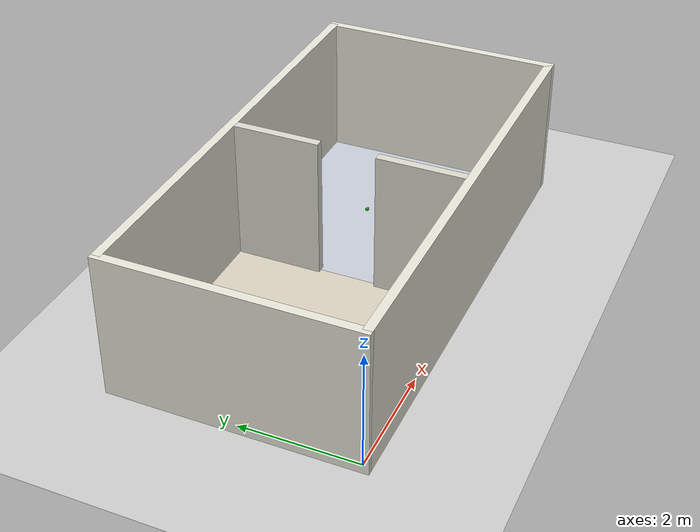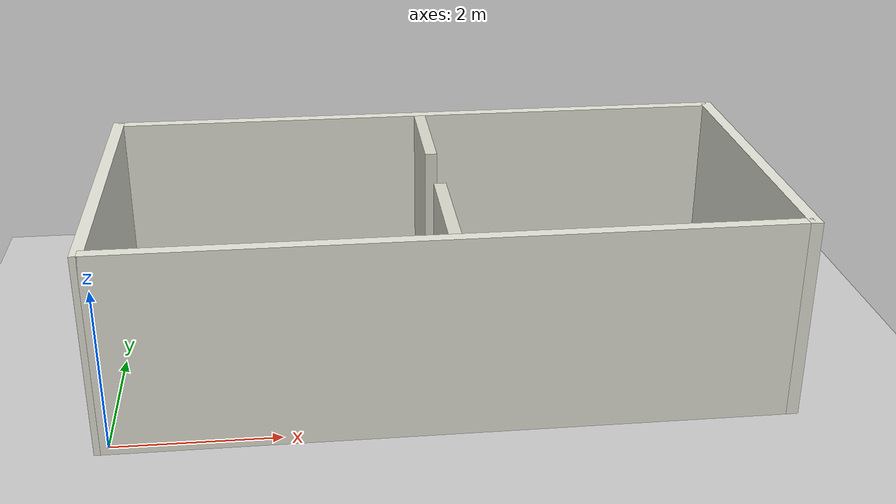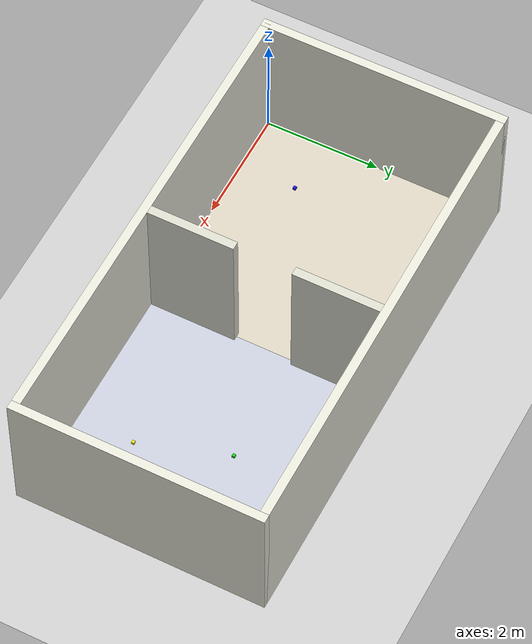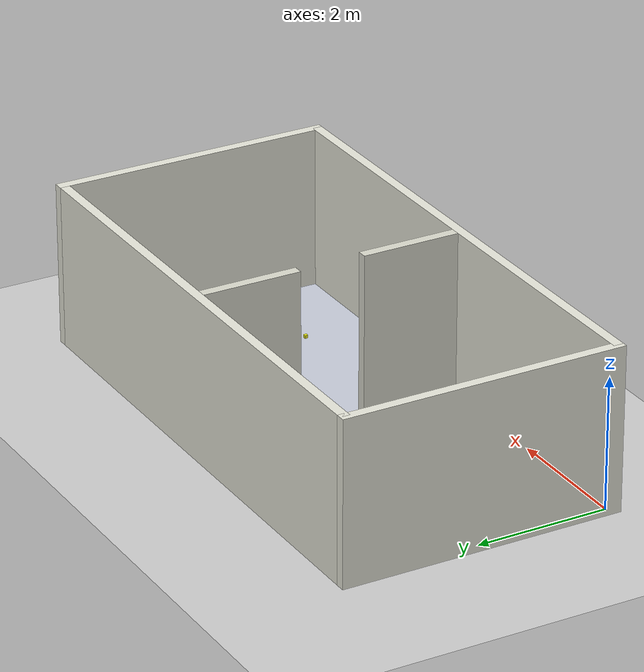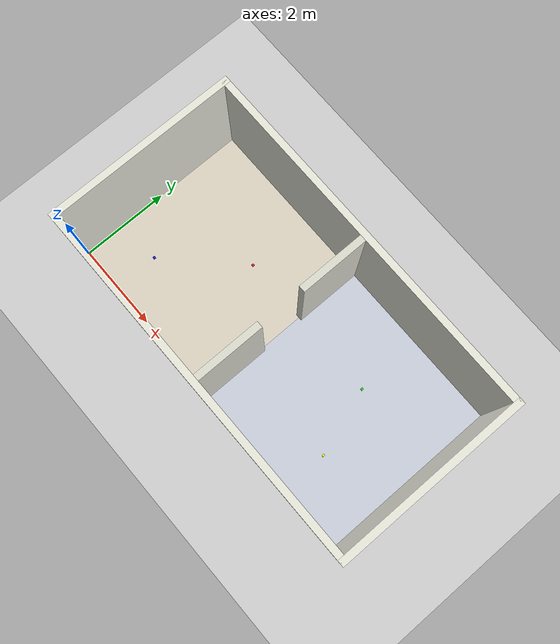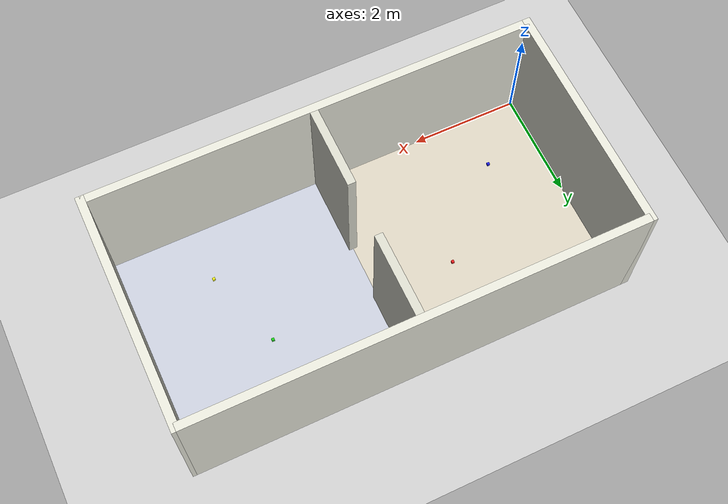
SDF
<?xml version="1.0" encoding="utf-8"?>
<sdf version="1.8">
  <world name="two_room_world">

    <!-- Physics -->
    <physics type="bullet" name="bullet_featherstone">
      <max_step_size>0.001</max_step_size>
      <real_time_factor>1.0</real_time_factor>
      <real_time_update_rate>1000</real_time_update_rate>
    </physics>

    <gravity>0 0 -9.8</gravity>
    <magnetic_field>6e-06 2.3e-05 -4.2e-05</magnetic_field>
    <atmosphere type="adiabatic"/>

    <!-- Plugins -->
    <plugin name="gz::sim::systems::Physics" filename="gz-sim-physics-system">
      <engine><filename>gz-physics-bullet-featherstone-plugin</filename></engine>
    </plugin>
    <plugin name="gz::sim::systems::UserCommands" filename="gz-sim-user-commands-system"/>
    <plugin name="gz::sim::systems::SceneBroadcaster" filename="gz-sim-scene-broadcaster-system"/>
    <plugin name="gz::sim::systems::Contact" filename="gz-sim-contact-system"/>
    <plugin name="gz::sim::systems::Imu" filename="gz-sim-imu-system"/>
    <plugin name="gz::sim::systems::Sensors" filename="gz-sim-sensors-system">
      <render_engine>ogre2</render_engine>
    </plugin>

    <!-- Scene -->
    <scene>
      <grid>false</grid>
      <ambient>0.5 0.5 0.5 1</ambient>
      <background>0.7 0.85 1.0 1</background>
      <shadows>true</shadows>
    </scene>

    <!-- GUI: initial camera looking down at both rooms -->
    <gui fullscreen="false">
      <plugin name="3D View" filename="GzScene3D">
        <gz-gui>
          <title>3D View</title>
          <property type="bool" key="showTitleBar">0</property>
          <property type="string" key="state">docked</property>
        </gz-gui>
        <engine>ogre2</engine>
        <scene>scene</scene>
        <ambient_light>0.5 0.5 0.5</ambient_light>
        <background_color>0.7 0.85 1.0</background_color>
        <camera_pose>4 -4 8 0 0.9 1.57</camera_pose>
      </plugin>
      <plugin name="World control" filename="WorldControl">
        <gz-gui>
          <title>World control</title>
          <property type="bool" key="showTitleBar">0</property>
          <property type="bool" key="resizable">0</property>
          <property type="double" key="height">72</property>
          <property type="double" key="width">121</property>
          <property type="double" key="z">1</property>
          <property type="string" key="state">floating</property>
          <anchors target="3D View">
            <line own="left" target="left"/>
            <line own="bottom" target="bottom"/>
          </anchors>
        </gz-gui>
        <play_pause>1</play_pause>
        <step>1</step>
        <start_paused>0</start_paused>
      </plugin>
      <plugin name="World stats" filename="WorldStats">
        <gz-gui>
          <title>World stats</title>
          <property type="bool" key="showTitleBar">0</property>
          <property type="bool" key="resizable">0</property>
          <property type="double" key="height">110</property>
          <property type="double" key="width">290</property>
          <property type="double" key="z">1</property>
          <property type="string" key="state">floating</property>
          <anchors target="3D View">
            <line own="right" target="right"/>
            <line own="bottom" target="bottom"/>
          </anchors>
        </gz-gui>
        <sim_time>1</sim_time>
        <real_time>1</real_time>
        <real_time_factor>1</real_time_factor>
        <iterations>1</iterations>
      </plugin>
      <plugin name="Entity tree" filename="EntityTree"/>
    </gui>

    <!-- ==================== Lighting ==================== -->

    <!-- Sun -->
    <light name="sun" type="directional">
      <pose>0 0 500 0 0 0</pose>
      <cast_shadows>true</cast_shadows>
      <intensity>1</intensity>
      <direction>0.001 0.625 -0.78</direction>
      <diffuse>0.9 0.9 0.9 1</diffuse>
      <specular>0.3 0.3 0.3 1</specular>
      <attenuation>
        <range>2000</range>
        <constant>1</constant>
        <linear>0</linear>
        <quadratic>0</quadratic>
      </attenuation>
    </light>

    <!-- Room A ceiling light -->
    <light name="light_room_a" type="point">
      <pose>2 2 2.4 0 0 0</pose>
      <diffuse>0.5 0.5 0.5 1</diffuse>
      <specular>0.1 0.1 0.1 1</specular>
      <attenuation>
        <range>10</range>
        <constant>0.3</constant>
        <linear>0.01</linear>
        <quadratic>0.001</quadratic>
      </attenuation>
    </light>

    <!-- Room B ceiling light -->
    <light name="light_room_b" type="point">
      <pose>6 2 2.4 0 0 0</pose>
      <diffuse>0.5 0.5 0.5 1</diffuse>
      <specular>0.1 0.1 0.1 1</specular>
      <attenuation>
        <range>10</range>
        <constant>0.3</constant>
        <linear>0.01</linear>
        <quadratic>0.001</quadratic>
      </attenuation>
    </light>

    <!-- ==================== Ground Plane ==================== -->

    <model name="ground_plane">
      <static>true</static>
      <link name="link">
        <collision name="collision">
          <geometry>
            <plane>
              <normal>0 0 1</normal>
              <size>100 100</size>
            </plane>
          </geometry>
          <surface>
            <friction>
              <ode/>
            </friction>
          </surface>
        </collision>
        <visual name="visual">
          <geometry>
            <plane>
              <normal>0 0 1</normal>
              <size>100 100</size>
            </plane>
          </geometry>
          <material>
            <ambient>0.8 0.8 0.8 1</ambient>
            <diffuse>0.8 0.8 0.8 1</diffuse>
            <specular>0.8 0.8 0.8 1</specular>
          </material>
        </visual>
      </link>
    </model>

    <!-- ==================== Room Floor Panels ==================== -->
    <!-- Thin colored panels on top of ground to visually distinguish rooms -->

    <!-- Room A floor (light beige) -->
    <model name="floor_room_a">
      <static>true</static>
      <pose>2 2 0.001 0 0 0</pose>
      <link name="link">
        <visual name="visual">
          <geometry>
            <box><size>4 4 0.002</size></box>
          </geometry>
          <material>
            <ambient>0.85 0.82 0.75 1</ambient>
            <diffuse>0.85 0.82 0.75 1</diffuse>
          </material>
        </visual>
      </link>
    </model>

    <!-- Room B floor (light gray-blue) -->
    <model name="floor_room_b">
      <static>true</static>
      <pose>6 2 0.001 0 0 0</pose>
      <link name="link">
        <visual name="visual">
          <geometry>
            <box><size>4 4 0.002</size></box>
          </geometry>
          <material>
            <ambient>0.78 0.8 0.85 1</ambient>
            <diffuse>0.78 0.8 0.85 1</diffuse>
          </material>
        </visual>
      </link>
    </model>

    <!-- ==================== Walls ==================== -->

    <!-- South wall (y=0, full width) -->
    <model name="wall_south">
      <static>true</static>
      <pose>4 -0.075 1.25 0 0 0</pose>
      <link name="link">
        <collision name="collision">
          <geometry><box><size>8.15 0.15 2.5</size></box></geometry>
        </collision>
        <visual name="visual">
          <geometry><box><size>8.15 0.15 2.5</size></box></geometry>
          <material>
            <ambient>0.9 0.9 0.85 1</ambient>
            <diffuse>0.9 0.9 0.85 1</diffuse>
          </material>
        </visual>
      </link>
    </model>

    <!-- North wall (y=4, full width) -->
    <model name="wall_north">
      <static>true</static>
      <pose>4 4.075 1.25 0 0 0</pose>
      <link name="link">
        <collision name="collision">
          <geometry><box><size>8.15 0.15 2.5</size></box></geometry>
        </collision>
        <visual name="visual">
          <geometry><box><size>8.15 0.15 2.5</size></box></geometry>
          <material>
            <ambient>0.9 0.9 0.85 1</ambient>
            <diffuse>0.9 0.9 0.85 1</diffuse>
          </material>
        </visual>
      </link>
    </model>

    <!-- West wall (x=0) -->
    <model name="wall_west">
      <static>true</static>
      <pose>-0.075 2 1.25 0 0 0</pose>
      <link name="link">
        <collision name="collision">
          <geometry><box><size>0.15 4.3 2.5</size></box></geometry>
        </collision>
        <visual name="visual">
          <geometry><box><size>0.15 4.3 2.5</size></box></geometry>
          <material>
            <ambient>0.9 0.9 0.85 1</ambient>
            <diffuse>0.9 0.9 0.85 1</diffuse>
          </material>
        </visual>
      </link>
    </model>

    <!-- East wall (x=8) -->
    <model name="wall_east">
      <static>true</static>
      <pose>8.075 2 1.25 0 0 0</pose>
      <link name="link">
        <collision name="collision">
          <geometry><box><size>0.15 4.3 2.5</size></box></geometry>
        </collision>
        <visual name="visual">
          <geometry><box><size>0.15 4.3 2.5</size></box></geometry>
          <material>
            <ambient>0.9 0.9 0.85 1</ambient>
            <diffuse>0.9 0.9 0.85 1</diffuse>
          </material>
        </visual>
      </link>
    </model>

    <!-- Dividing wall - bottom segment (y=0 to y=1.5) -->
    <model name="wall_divider_south">
      <static>true</static>
      <pose>4 0.75 1.25 0 0 0</pose>
      <link name="link">
        <collision name="collision">
          <geometry><box><size>0.15 1.5 2.5</size></box></geometry>
        </collision>
        <visual name="visual">
          <geometry><box><size>0.15 1.5 2.5</size></box></geometry>
          <material>
            <ambient>0.85 0.85 0.8 1</ambient>
            <diffuse>0.85 0.85 0.8 1</diffuse>
          </material>
        </visual>
      </link>
    </model>

    <!-- Dividing wall - top segment (y=2.5 to y=4) -->
    <model name="wall_divider_north">
      <static>true</static>
      <pose>4 3.25 1.25 0 0 0</pose>
      <link name="link">
        <collision name="collision">
          <geometry><box><size>0.15 1.5 2.5</size></box></geometry>
        </collision>
        <visual name="visual">
          <geometry><box><size>0.15 1.5 2.5</size></box></geometry>
          <material>
            <ambient>0.85 0.85 0.8 1</ambient>
            <diffuse>0.85 0.85 0.8 1</diffuse>
          </material>
        </visual>
      </link>
    </model>

    <!-- ==================== Colored Cubes ==================== -->
    <!-- 5cm cubes (0.05m) per PRD spec (5-8cm), visible to camera at room distances -->
    <!-- mass 0.05kg, placed on floor (z = half-height = 0.025) -->
    <!-- Inertia for uniform cube: I = (1/6)*m*s^2 = (1/6)*0.05*0.0025 = 2.083e-05 -->

    <!-- Red cube - Room A -->
    <model name="red_cube">
      <pose>2.5 2.5 0.025 0 0 0</pose>
      <link name="link">
        <inertial>
          <mass>0.05</mass>
          <inertia>
            <ixx>2.083e-05</ixx>
            <ixy>0</ixy>
            <ixz>0</ixz>
            <iyy>2.083e-05</iyy>
            <iyz>0</iyz>
            <izz>2.083e-05</izz>
          </inertia>
        </inertial>
        <collision name="collision">
          <geometry><box><size>0.05 0.05 0.05</size></box></geometry>
          <surface>
            <friction>
              <ode>
                <mu>1.0</mu>
                <mu2>1.0</mu2>
              </ode>
            </friction>
          </surface>
        </collision>
        <visual name="visual">
          <geometry><box><size>0.05 0.05 0.05</size></box></geometry>
          <material>
            <ambient>0.8 0.0 0.0 1</ambient>
            <diffuse>0.9 0.1 0.1 1</diffuse>
            <specular>0.4 0.4 0.4 1</specular>
          </material>
        </visual>
      </link>
    </model>

    <!-- Blue cube - Room A -->
    <model name="blue_cube">
      <pose>1.0 1.0 0.025 0 0 0</pose>
      <link name="link">
        <inertial>
          <mass>0.05</mass>
          <inertia>
            <ixx>2.083e-05</ixx>
            <ixy>0</ixy>
            <ixz>0</ixz>
            <iyy>2.083e-05</iyy>
            <iyz>0</iyz>
            <izz>2.083e-05</izz>
          </inertia>
        </inertial>
        <collision name="collision">
          <geometry><box><size>0.05 0.05 0.05</size></box></geometry>
          <surface>
            <friction>
              <ode>
                <mu>1.0</mu>
                <mu2>1.0</mu2>
              </ode>
            </friction>
          </surface>
        </collision>
        <visual name="visual">
          <geometry><box><size>0.05 0.05 0.05</size></box></geometry>
          <material>
            <ambient>0.0 0.0 0.8 1</ambient>
            <diffuse>0.1 0.1 0.9 1</diffuse>
            <specular>0.4 0.4 0.4 1</specular>
          </material>
        </visual>
      </link>
    </model>

    <!-- Green cube - Room B -->
    <model name="green_cube">
      <pose>6.0 2.5 0.025 0 0 0</pose>
      <link name="link">
        <inertial>
          <mass>0.05</mass>
          <inertia>
            <ixx>2.083e-05</ixx>
            <ixy>0</ixy>
            <ixz>0</ixz>
            <iyy>2.083e-05</iyy>
            <iyz>0</iyz>
            <izz>2.083e-05</izz>
          </inertia>
        </inertial>
        <collision name="collision">
          <geometry><box><size>0.05 0.05 0.05</size></box></geometry>
          <surface>
            <friction>
              <ode>
                <mu>1.0</mu>
                <mu2>1.0</mu2>
              </ode>
            </friction>
          </surface>
        </collision>
        <visual name="visual">
          <geometry><box><size>0.05 0.05 0.05</size></box></geometry>
          <material>
            <ambient>0.0 0.7 0.0 1</ambient>
            <diffuse>0.1 0.8 0.1 1</diffuse>
            <specular>0.4 0.4 0.4 1</specular>
          </material>
        </visual>
      </link>
    </model>

    <!-- Yellow cube - Room B -->
    <model name="yellow_cube">
      <pose>6.5 1.0 0.025 0 0 0</pose>
      <link name="link">
        <inertial>
          <mass>0.05</mass>
          <inertia>
            <ixx>2.083e-05</ixx>
            <ixy>0</ixy>
            <ixz>0</ixz>
            <iyy>2.083e-05</iyy>
            <iyz>0</iyz>
            <izz>2.083e-05</izz>
          </inertia>
        </inertial>
        <collision name="collision">
          <geometry><box><size>0.05 0.05 0.05</size></box></geometry>
          <surface>
            <friction>
              <ode>
                <mu>1.0</mu>
                <mu2>1.0</mu2>
              </ode>
            </friction>
          </surface>
        </collision>
        <visual name="visual">
          <geometry><box><size>0.05 0.05 0.05</size></box></geometry>
          <material>
            <ambient>0.8 0.8 0.0 1</ambient>
            <diffuse>0.9 0.9 0.1 1</diffuse>
            <specular>0.4 0.4 0.4 1</specular>
          </material>
        </visual>
      </link>
    </model>

  </world>
</sdf>
